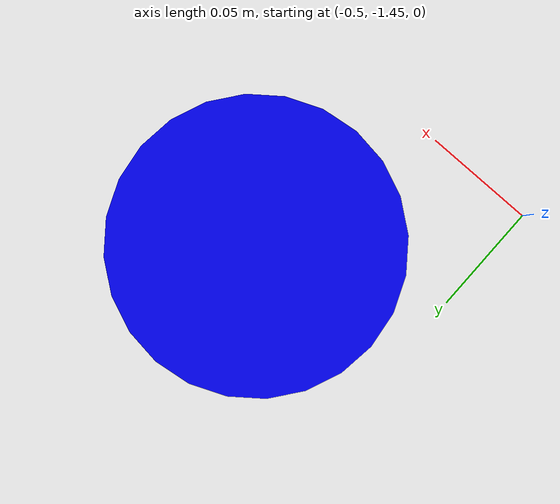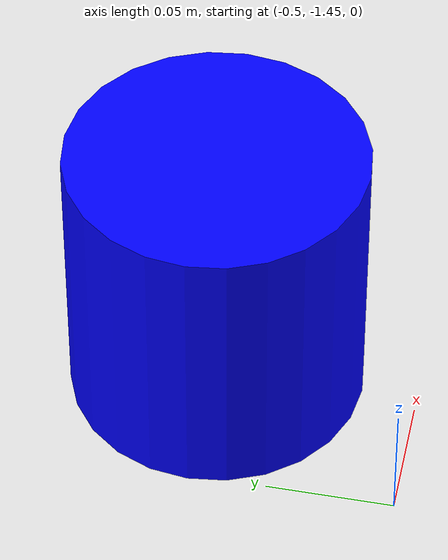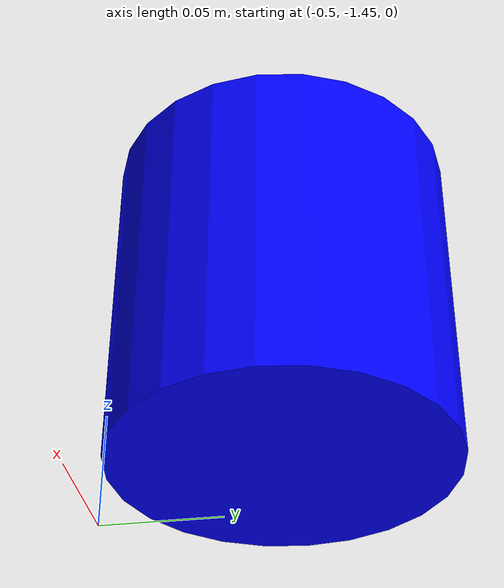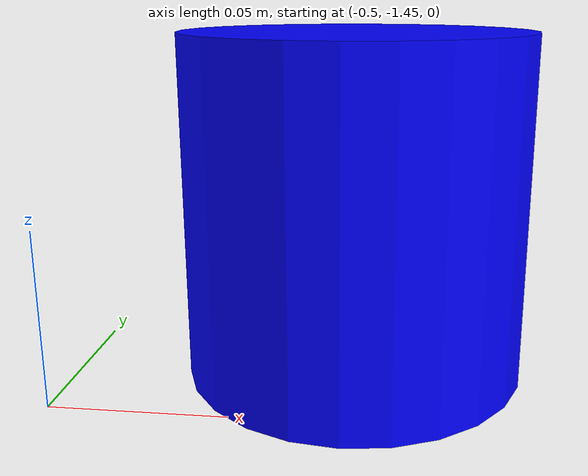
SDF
<?xml version="1.0" ?>
<sdf version="1.6">
  <model name="cylinder_obstacle">
    <pose> -0.422641 -1.365163 0.036766 0 0 0 </pose>
    <link name="cylinder_link">
      <inertial>
        <mass>1.0</mass>
        <inertia>
          <ixx>0.01</ixx>
          <ixy>0.0</ixy>
          <ixz>0.0</ixz>
          <iyy>0.01</iyy>
          <iyz>0.0</iyz>
          <izz>0.01</izz>
        </inertia>
      </inertial>
      <collision name="cylinder_collision">
        <geometry>
          <cylinder>
            <radius>-0.06</radius>
            <length>-0.12</length>
          </cylinder>
        </geometry>
      </collision>
      <visual name="cylinder_visual">
        <geometry>
          <cylinder>
            <radius>0.06</radius>
            <length>0.12</length>
          </cylinder>
        </geometry>
        <material>
          <ambient>0 0 1 1</ambient>
          <diffuse>0 0 1 1</diffuse>
        </material>
      </visual>
    </link>
    <static>true</static>
  </model>
</sdf>
